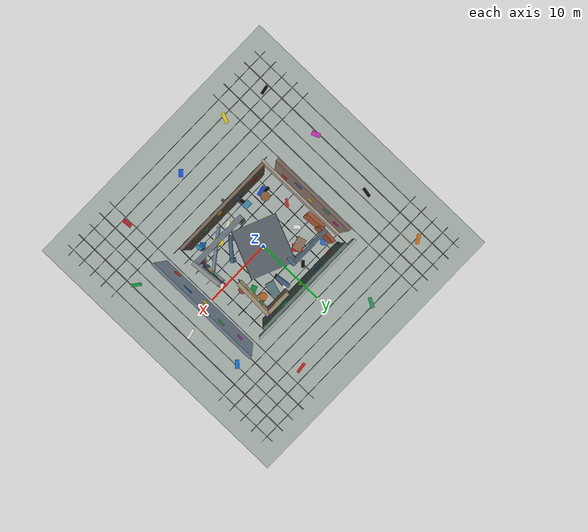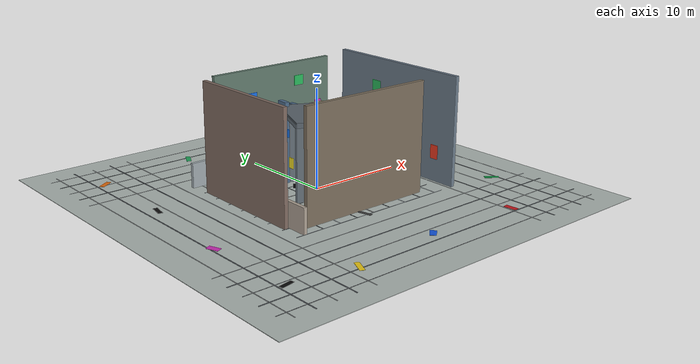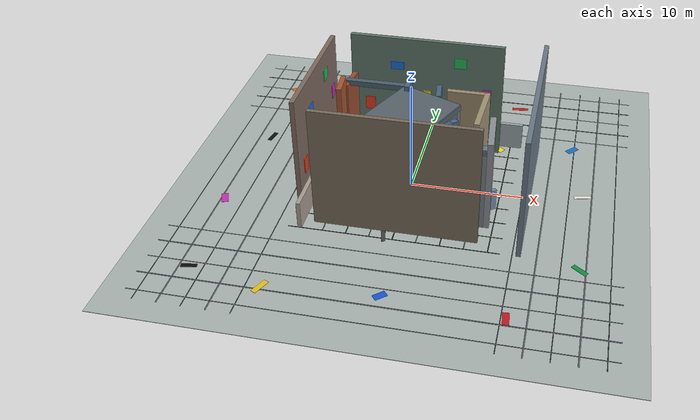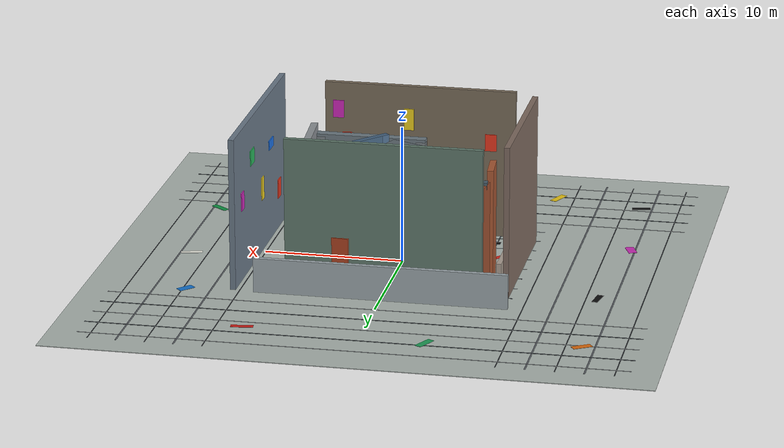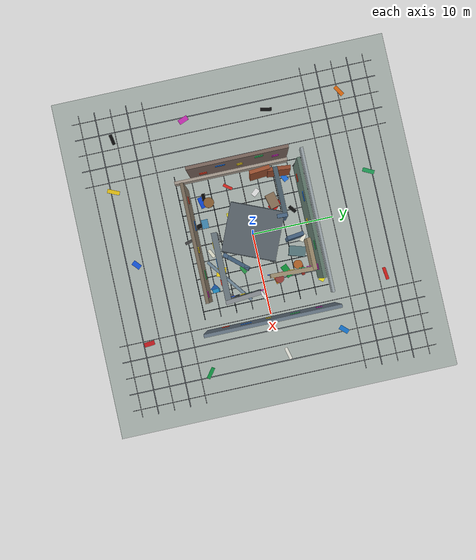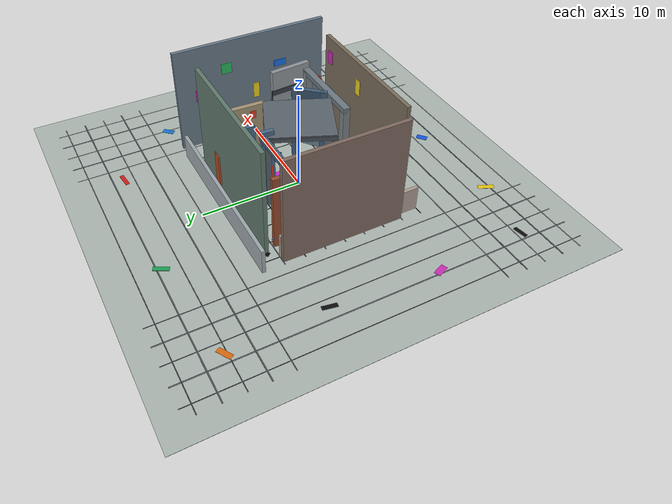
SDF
<sdf version="1.10">
 <world name="simple_apm_rgbd_mid360">
  <physics name="apm_1ms_physics" type="ignored">
   <max_step_size>0.001</max_step_size>
   <real_time_factor>1.0</real_time_factor>
  </physics>
  <plugin filename="gz-sim-physics-system" name="gz::sim::systems::Physics"/>
  <plugin filename="gz-sim-air-pressure-system" name="gz::sim::systems::AirPressure"/>
  <plugin filename="gz-sim-sensors-system" name="gz::sim::systems::Sensors">
   <render_engine>ogre2</render_engine>
  </plugin>
  <plugin filename="gz-sim-user-commands-system" name="gz::sim::systems::UserCommands"/>
  <plugin filename="gz-sim-scene-broadcaster-system" name="gz::sim::systems::SceneBroadcaster"/>
  <plugin filename="gz-sim-imu-system" name="gz::sim::systems::Imu"/>
  <plugin filename="gz-sim-navsat-system" name="gz::sim::systems::NavSat"/>
  <scene>
   <ambient>0.55 0.55 0.55 1</ambient>
   <background>0.72 0.78 0.86 1</background>
   <grid>false</grid>
   <shadows>true</shadows>
  </scene>
  <spherical_coordinates>
   <latitude_deg>-35.363262</latitude_deg>
   <longitude_deg>149.165237</longitude_deg>
   <elevation>584</elevation>
   <heading_deg>0</heading_deg>
   <surface_model>EARTH_WGS84</surface_model>
  </spherical_coordinates>
  <light name="sun" type="directional">
   <pose>0 0 20 0 0 0</pose>
   <direction>-0.45 0.25 -0.86</direction>
   <diffuse>0.95 0.92 0.86 1</diffuse>
   <specular>0.35 0.35 0.32 1</specular>
  </light>
  <model name="textured_floor">
   <static>true</static>
   <pose>0 0 -0.025 0 0 0</pose>
   <link name="floor_link">
    <collision name="floor_collision"><geometry><box><size>42 42 0.05</size></box></geometry></collision>
    <visual name="floor_visual">
     <geometry><box><size>42 42 0.05</size></box></geometry>
     <material>
      <ambient>0.68 0.72 0.70 1</ambient>
      <diffuse>0.68 0.72 0.70 1</diffuse>
      <specular>0.08 0.08 0.08 1</specular>
     </material>
    </visual>
   </link>
  </model>
  <model name="visible_floor_pattern">
   <static>true</static>
   <link name="pattern_link">
    <visual name="x_grid_-18">
     <pose>-18 0 0.012 0 0 0</pose>
     <geometry><box><size>0.08 38 0.012</size></box></geometry>
     <material><diffuse>0.06 0.07 0.08 1</diffuse></material>
    </visual>
    <visual name="x_grid_-16">
     <pose>-16 0 0.012 0 0 0</pose>
     <geometry><box><size>0.12 38 0.012</size></box></geometry>
     <material><diffuse>0.34 0.36 0.38 1</diffuse></material>
    </visual>
    <visual name="x_grid_-14">
     <pose>-14 0 0.012 0 0 0</pose>
     <geometry><box><size>0.08 38 0.012</size></box></geometry>
     <material><diffuse>0.06 0.07 0.08 1</diffuse></material>
    </visual>
    <visual name="x_grid_-12">
     <pose>-12 0 0.012 0 0 0</pose>
     <geometry><box><size>0.12 38 0.012</size></box></geometry>
     <material><diffuse>0.34 0.36 0.38 1</diffuse></material>
    </visual>
    <visual name="x_grid_-10">
     <pose>-10 0 0.012 0 0 0</pose>
     <geometry><box><size>0.08 38 0.012</size></box></geometry>
     <material><diffuse>0.06 0.07 0.08 1</diffuse></material>
    </visual>
    <visual name="x_grid_-8">
     <pose>-8 0 0.012 0 0 0</pose>
     <geometry><box><size>0.08 16 0.012</size></box></geometry>
     <material><ambient>0.08 0.10 0.12 1</ambient><diffuse>0.08 0.10 0.12 1</diffuse></material>
    </visual>
    <visual name="x_grid_-6">
     <pose>-6 0 0.012 0 0 0</pose>
     <geometry><box><size>0.08 16 0.012</size></box></geometry>
     <material><ambient>0.28 0.30 0.32 1</ambient><diffuse>0.28 0.30 0.32 1</diffuse></material>
    </visual>
    <visual name="x_grid_-4">
     <pose>-4 0 0.012 0 0 0</pose>
     <geometry><box><size>0.08 16 0.012</size></box></geometry>
     <material><ambient>0.08 0.10 0.12 1</ambient><diffuse>0.08 0.10 0.12 1</diffuse></material>
    </visual>
    <visual name="x_grid_-2">
     <pose>-2 0 0.012 0 0 0</pose>
     <geometry><box><size>0.08 16 0.012</size></box></geometry>
     <material><ambient>0.28 0.30 0.32 1</ambient><diffuse>0.28 0.30 0.32 1</diffuse></material>
    </visual>
    <visual name="x_grid_0">
     <pose>0 0 0.012 0 0 0</pose>
     <geometry><box><size>0.10 16 0.012</size></box></geometry>
     <material><ambient>0.02 0.02 0.02 1</ambient><diffuse>0.02 0.02 0.02 1</diffuse></material>
    </visual>
    <visual name="x_grid_2">
     <pose>2 0 0.012 0 0 0</pose>
     <geometry><box><size>0.08 16 0.012</size></box></geometry>
     <material><ambient>0.28 0.30 0.32 1</ambient><diffuse>0.28 0.30 0.32 1</diffuse></material>
    </visual>
    <visual name="x_grid_4">
     <pose>4 0 0.012 0 0 0</pose>
     <geometry><box><size>0.08 16 0.012</size></box></geometry>
     <material><ambient>0.08 0.10 0.12 1</ambient><diffuse>0.08 0.10 0.12 1</diffuse></material>
    </visual>
    <visual name="x_grid_6">
     <pose>6 0 0.012 0 0 0</pose>
     <geometry><box><size>0.08 16 0.012</size></box></geometry>
     <material><ambient>0.28 0.30 0.32 1</ambient><diffuse>0.28 0.30 0.32 1</diffuse></material>
    </visual>
    <visual name="x_grid_8">
     <pose>8 0 0.012 0 0 0</pose>
     <geometry><box><size>0.08 16 0.012</size></box></geometry>
     <material><ambient>0.08 0.10 0.12 1</ambient><diffuse>0.08 0.10 0.12 1</diffuse></material>
    </visual>
    <visual name="x_grid_10">
     <pose>10 0 0.012 0 0 0</pose>
     <geometry><box><size>0.08 38 0.012</size></box></geometry>
     <material><diffuse>0.06 0.07 0.08 1</diffuse></material>
    </visual>
    <visual name="x_grid_12">
     <pose>12 0 0.012 0 0 0</pose>
     <geometry><box><size>0.12 38 0.012</size></box></geometry>
     <material><diffuse>0.34 0.36 0.38 1</diffuse></material>
    </visual>
    <visual name="x_grid_14">
     <pose>14 0 0.012 0 0 0</pose>
     <geometry><box><size>0.08 38 0.012</size></box></geometry>
     <material><diffuse>0.06 0.07 0.08 1</diffuse></material>
    </visual>
    <visual name="x_grid_16">
     <pose>16 0 0.012 0 0 0</pose>
     <geometry><box><size>0.12 38 0.012</size></box></geometry>
     <material><diffuse>0.34 0.36 0.38 1</diffuse></material>
    </visual>
    <visual name="x_grid_18">
     <pose>18 0 0.012 0 0 0</pose>
     <geometry><box><size>0.08 38 0.012</size></box></geometry>
     <material><diffuse>0.06 0.07 0.08 1</diffuse></material>
    </visual>
    <visual name="y_grid_-18">
     <pose>0 -18 0.014 0 0 0</pose>
     <geometry><box><size>38 0.08 0.012</size></box></geometry>
     <material><diffuse>0.05 0.06 0.07 1</diffuse></material>
    </visual>
    <visual name="y_grid_-16">
     <pose>0 -16 0.014 0 0 0</pose>
     <geometry><box><size>38 0.12 0.012</size></box></geometry>
     <material><diffuse>0.32 0.34 0.36 1</diffuse></material>
    </visual>
    <visual name="y_grid_-14">
     <pose>0 -14 0.014 0 0 0</pose>
     <geometry><box><size>38 0.08 0.012</size></box></geometry>
     <material><diffuse>0.05 0.06 0.07 1</diffuse></material>
    </visual>
    <visual name="y_grid_-12">
     <pose>0 -12 0.014 0 0 0</pose>
     <geometry><box><size>38 0.12 0.012</size></box></geometry>
     <material><diffuse>0.32 0.34 0.36 1</diffuse></material>
    </visual>
    <visual name="y_grid_-10">
     <pose>0 -10 0.014 0 0 0</pose>
     <geometry><box><size>38 0.08 0.012</size></box></geometry>
     <material><diffuse>0.05 0.06 0.07 1</diffuse></material>
    </visual>
    <visual name="y_grid_-8">
     <pose>0 -8 0.014 0 0 0</pose>
     <geometry><box><size>18 0.08 0.012</size></box></geometry>
     <material><ambient>0.08 0.10 0.12 1</ambient><diffuse>0.08 0.10 0.12 1</diffuse></material>
    </visual>
    <visual name="y_grid_-6">
     <pose>0 -6 0.014 0 0 0</pose>
     <geometry><box><size>18 0.08 0.012</size></box></geometry>
     <material><ambient>0.30 0.32 0.34 1</ambient><diffuse>0.30 0.32 0.34 1</diffuse></material>
    </visual>
    <visual name="y_grid_-4">
     <pose>0 -4 0.014 0 0 0</pose>
     <geometry><box><size>18 0.08 0.012</size></box></geometry>
     <material><ambient>0.08 0.10 0.12 1</ambient><diffuse>0.08 0.10 0.12 1</diffuse></material>
    </visual>
    <visual name="y_grid_-2">
     <pose>0 -2 0.014 0 0 0</pose>
     <geometry><box><size>18 0.08 0.012</size></box></geometry>
     <material><ambient>0.30 0.32 0.34 1</ambient><diffuse>0.30 0.32 0.34 1</diffuse></material>
    </visual>
    <visual name="y_grid_0">
     <pose>0 0 0.014 0 0 0</pose>
     <geometry><box><size>18 0.10 0.012</size></box></geometry>
     <material><ambient>0.02 0.02 0.02 1</ambient><diffuse>0.02 0.02 0.02 1</diffuse></material>
    </visual>
    <visual name="y_grid_2">
     <pose>0 2 0.014 0 0 0</pose>
     <geometry><box><size>18 0.08 0.012</size></box></geometry>
     <material><ambient>0.30 0.32 0.34 1</ambient><diffuse>0.30 0.32 0.34 1</diffuse></material>
    </visual>
    <visual name="y_grid_4">
     <pose>0 4 0.014 0 0 0</pose>
     <geometry><box><size>18 0.08 0.012</size></box></geometry>
     <material><ambient>0.08 0.10 0.12 1</ambient><diffuse>0.08 0.10 0.12 1</diffuse></material>
    </visual>
    <visual name="y_grid_6">
     <pose>0 6 0.014 0 0 0</pose>
     <geometry><box><size>18 0.08 0.012</size></box></geometry>
     <material><ambient>0.30 0.32 0.34 1</ambient><diffuse>0.30 0.32 0.34 1</diffuse></material>
    </visual>
    <visual name="y_grid_8">
     <pose>0 8 0.014 0 0 0</pose>
     <geometry><box><size>18 0.08 0.012</size></box></geometry>
     <material><ambient>0.08 0.10 0.12 1</ambient><diffuse>0.08 0.10 0.12 1</diffuse></material>
    </visual>
    <visual name="y_grid_10">
     <pose>0 10 0.014 0 0 0</pose>
     <geometry><box><size>38 0.08 0.012</size></box></geometry>
     <material><diffuse>0.05 0.06 0.07 1</diffuse></material>
    </visual>
    <visual name="y_grid_12">
     <pose>0 12 0.014 0 0 0</pose>
     <geometry><box><size>38 0.12 0.012</size></box></geometry>
     <material><diffuse>0.32 0.34 0.36 1</diffuse></material>
    </visual>
    <visual name="y_grid_14">
     <pose>0 14 0.014 0 0 0</pose>
     <geometry><box><size>38 0.08 0.012</size></box></geometry>
     <material><diffuse>0.05 0.06 0.07 1</diffuse></material>
    </visual>
    <visual name="y_grid_16">
     <pose>0 16 0.014 0 0 0</pose>
     <geometry><box><size>38 0.12 0.012</size></box></geometry>
     <material><diffuse>0.32 0.34 0.36 1</diffuse></material>
    </visual>
    <visual name="y_grid_18">
     <pose>0 18 0.014 0 0 0</pose>
     <geometry><box><size>38 0.08 0.012</size></box></geometry>
     <material><diffuse>0.05 0.06 0.07 1</diffuse></material>
    </visual>
    <visual name="blue_patch">
     <pose>-5.2 -5.2 0.022 0 0 0.22</pose>
     <geometry><box><size>1.4 0.9 0.014</size></box></geometry>
     <material><ambient>0.05 0.28 0.85 1</ambient><diffuse>0.05 0.28 0.85 1</diffuse></material>
    </visual>
    <visual name="yellow_patch">
     <pose>3.7 -4.8 0.022 0 0 -0.32</pose>
     <geometry><box><size>1.2 1.1 0.014</size></box></geometry>
     <material><ambient>0.95 0.82 0.08 1</ambient><diffuse>0.95 0.82 0.08 1</diffuse></material>
    </visual>
    <visual name="red_patch">
     <pose>-3.0 3.4 0.022 0 0 0.65</pose>
     <geometry><box><size>1.0 1.5 0.014</size></box></geometry>
     <material><ambient>0.82 0.10 0.08 1</ambient><diffuse>0.82 0.10 0.08 1</diffuse></material>
    </visual>
    <visual name="green_patch">
     <pose>5.3 3.1 0.022 0 0 0.4</pose>
     <geometry><box><size>1.6 0.8 0.014</size></box></geometry>
     <material><ambient>0.05 0.58 0.22 1</ambient><diffuse>0.05 0.58 0.22 1</diffuse></material>
    </visual>
   </link>
  </model>
  <model name="walls_and_obstacles">
   <static>true</static>
   <link name="link">
    <collision name="north_wall">
     <pose>0 8 1.25 0 0 0</pose>
     <geometry><box><size>18 0.35 2.5</size></box></geometry>
    </collision>
    <visual name="north_wall_v">
     <pose>0 8 1.25 0 0 0</pose>
     <geometry><box><size>18 0.35 2.5</size></box></geometry>
     <material><diffuse>0.62 0.66 0.68 1</diffuse></material>
    </visual>
    <collision name="west_wall">
     <pose>-8 -1 1.25 0 0 0</pose>
     <geometry><box><size>0.35 14 2.5</size></box></geometry>
    </collision>
    <visual name="west_wall_v">
     <pose>-8 -1 1.25 0 0 0</pose>
     <geometry><box><size>0.35 14 2.5</size></box></geometry>
     <material><diffuse>0.68 0.63 0.58 1</diffuse></material>
    </visual>
    <collision name="short_wall">
     <pose>5 -4 1.0 0 0 0.65</pose>
     <geometry><box><size>7 0.35 2.0</size></box></geometry>
    </collision>
    <visual name="short_wall_v">
     <pose>5 -4 1.0 0 0 0.65</pose>
     <geometry><box><size>7 0.35 2.0</size></box></geometry>
     <material><diffuse>0.45 0.55 0.62 1</diffuse></material>
    </visual>
    <collision name="box_1">
     <pose>-3.5 3.2 0.6 0 0 0.25</pose>
     <geometry><box><size>1.8 1.2 1.2</size></box></geometry>
    </collision>
    <visual name="box_1_v">
     <pose>-3.5 3.2 0.6 0 0 0.25</pose>
     <geometry><box><size>1.8 1.2 1.2</size></box></geometry>
     <material><diffuse>0.55 0.45 0.35 1</diffuse></material>
    </visual>
    <collision name="box_2">
     <pose>3.2 4.8 0.85 0 0 -0.3</pose>
     <geometry><box><size>1.2 2.0 1.7</size></box></geometry>
    </collision>
    <visual name="box_2_v">
     <pose>3.2 4.8 0.85 0 0 -0.3</pose>
     <geometry><box><size>1.2 2.0 1.7</size></box></geometry>
     <material><diffuse>0.35 0.48 0.5 1</diffuse></material>
    </visual>
    <collision name="cylinder">
     <pose>6 2 0.75 0 0 0</pose>
     <geometry><cylinder><radius>0.55</radius><length>1.5</length></cylinder></geometry>
    </collision>
    <visual name="cylinder_v">
     <pose>6 2 0.75 0 0 0</pose>
     <geometry><cylinder><radius>0.55</radius><length>1.5</length></cylinder></geometry>
     <material><diffuse>0.6 0.25 0.22 1</diffuse></material>
    </visual>
   </link>
  </model>
  <model name="flow_floor_markers">
   <static>true</static>
   <link name="markers_link">
    <visual name="marker_0">
     <pose>-5.80 -5.00 0.035 0 0 0.000</pose>
     <geometry><box><size>0.90 0.45 0.025</size></box></geometry>
     <material><ambient>0.02 0.02 0.02 1.0</ambient><diffuse>0.02 0.02 0.02 1.0</diffuse></material>
    </visual>
    <visual name="marker_1">
     <pose>-2.40 -6.20 0.035 0 0 0.230</pose>
     <geometry><box><size>0.55 1.10 0.025</size></box></geometry>
     <material><ambient>0.05 0.05 0.05 1.0</ambient><diffuse>0.05 0.05 0.05 1.0</diffuse></material>
    </visual>
    <visual name="marker_2">
     <pose>1.20 -5.50 0.035 0 0 0.460</pose>
     <geometry><box><size>1.10 0.40 0.025</size></box></geometry>
     <material><ambient>0.90 0.90 0.82 1.0</ambient><diffuse>0.90 0.90 0.82 1.0</diffuse></material>
    </visual>
    <visual name="marker_3">
     <pose>5.50 -6.00 0.035 0 0 0.690</pose>
     <geometry><box><size>0.70 0.80 0.025</size></box></geometry>
     <material><ambient>0.10 0.35 0.65 1.0</ambient><diffuse>0.10 0.35 0.65 1.0</diffuse></material>
    </visual>
    <visual name="marker_4">
     <pose>-6.40 -1.80 0.035 0 0 0.920</pose>
     <geometry><box><size>1.20 0.35 0.025</size></box></geometry>
     <material><ambient>0.86 0.15 0.12 1.0</ambient><diffuse>0.86 0.15 0.12 1.0</diffuse></material>
    </visual>
    <visual name="marker_5">
     <pose>-3.00 -2.20 0.035 0 0 0.000</pose>
     <geometry><box><size>0.45 0.95 0.025</size></box></geometry>
     <material><ambient>0.95 0.90 0.20 1.0</ambient><diffuse>0.95 0.90 0.20 1.0</diffuse></material>
    </visual>
    <visual name="marker_6">
     <pose>0.40 -1.60 0.035 0 0 0.230</pose>
     <geometry><box><size>0.80 0.65 0.025</size></box></geometry>
     <material><ambient>0.03 0.03 0.03 1.0</ambient><diffuse>0.03 0.03 0.03 1.0</diffuse></material>
    </visual>
    <visual name="marker_7">
     <pose>4.00 -2.10 0.035 0 0 0.460</pose>
     <geometry><box><size>1.00 0.45 0.025</size></box></geometry>
     <material><ambient>0.15 0.60 0.28 1.0</ambient><diffuse>0.15 0.60 0.28 1.0</diffuse></material>
    </visual>
    <visual name="marker_8">
     <pose>-5.00 1.40 0.035 0 0 0.690</pose>
     <geometry><box><size>0.60 1.00 0.025</size></box></geometry>
     <material><ambient>0.92 0.92 0.92 1.0</ambient><diffuse>0.92 0.92 0.92 1.0</diffuse></material>
    </visual>
    <visual name="marker_9">
     <pose>-1.10 1.90 0.035 0 0 0.920</pose>
     <geometry><box><size>1.20 0.50 0.025</size></box></geometry>
     <material><ambient>0.02 0.02 0.02 1.0</ambient><diffuse>0.02 0.02 0.02 1.0</diffuse></material>
    </visual>
    <visual name="marker_10">
     <pose>2.20 1.20 0.035 0 0 0.000</pose>
     <geometry><box><size>0.55 1.15 0.025</size></box></geometry>
     <material><ambient>0.75 0.20 0.85 1.0</ambient><diffuse>0.75 0.20 0.85 1.0</diffuse></material>
    </visual>
    <visual name="marker_11">
     <pose>6.10 1.70 0.035 0 0 0.230</pose>
     <geometry><box><size>0.95 0.50 0.025</size></box></geometry>
     <material><ambient>0.85 0.55 0.08 1.0</ambient><diffuse>0.85 0.55 0.08 1.0</diffuse></material>
    </visual>
    <visual name="marker_12">
     <pose>-6.00 5.30 0.035 0 0 0.460</pose>
     <geometry><box><size>0.85 0.65 0.025</size></box></geometry>
     <material><ambient>0.12 0.45 0.90 1.0</ambient><diffuse>0.12 0.45 0.90 1.0</diffuse></material>
    </visual>
    <visual name="marker_13">
     <pose>-2.00 5.40 0.035 0 0 0.690</pose>
     <geometry><box><size>1.05 0.45 0.025</size></box></geometry>
     <material><ambient>0.05 0.05 0.05 1.0</ambient><diffuse>0.05 0.05 0.05 1.0</diffuse></material>
    </visual>
    <visual name="marker_14">
     <pose>1.70 5.90 0.035 0 0 0.920</pose>
     <geometry><box><size>0.50 1.00 0.025</size></box></geometry>
     <material><ambient>0.95 0.95 0.88 1.0</ambient><diffuse>0.95 0.95 0.88 1.0</diffuse></material>
    </visual>
    <visual name="marker_15">
     <pose>5.60 5.00 0.035 0 0 0.000</pose>
     <geometry><box><size>1.25 0.40 0.025</size></box></geometry>
     <material><ambient>0.55 0.15 0.12 1.0</ambient><diffuse>0.55 0.15 0.12 1.0</diffuse></material>
    </visual>
    <visual name="marker_16">
     <pose>-0.80 -7.70 0.035 0 0 0.230</pose>
     <geometry><box><size>0.35 1.40 0.025</size></box></geometry>
     <material><ambient>0.25 0.25 0.25 1.0</ambient><diffuse>0.25 0.25 0.25 1.0</diffuse></material>
    </visual>
    <visual name="marker_17">
     <pose>7.50 -0.40 0.035 0 0 0.460</pose>
     <geometry><box><size>1.40 0.35 0.025</size></box></geometry>
     <material><ambient>0.93 0.93 0.93 1.0</ambient><diffuse>0.93 0.93 0.93 1.0</diffuse></material>
    </visual>
    <visual name="marker_18">
     <pose>-7.20 6.90 0.035 0 0 0.690</pose>
     <geometry><box><size>0.50 0.50 0.025</size></box></geometry>
     <material><ambient>0.02 0.02 0.02 1.0</ambient><diffuse>0.02 0.02 0.02 1.0</diffuse></material>
    </visual>
    <visual name="marker_19">
     <pose>7.00 7.20 0.035 0 0 0.920</pose>
     <geometry><box><size>0.65 0.95 0.025</size></box></geometry>
     <material><ambient>0.95 0.90 0.10 1.0</ambient><diffuse>0.95 0.90 0.10 1.0</diffuse></material>
    </visual>
    <visual name="marker_20">
     <pose>-15.2 -14.5 0.035 0 0 0.18</pose>
     <geometry><box><size>1.35 0.42 0.025</size></box></geometry>
     <material><diffuse>0.04 0.04 0.04 1</diffuse></material>
    </visual>
    <visual name="marker_21">
     <pose>-8.8 -15.7 0.035 0 0 -0.42</pose>
     <geometry><box><size>0.48 1.55 0.025</size></box></geometry>
     <material><diffuse>0.92 0.78 0.08 1</diffuse></material>
    </visual>
    <visual name="marker_22">
     <pose>0.6 -14.8 0.035 0 0 0.72</pose>
     <geometry><box><size>1.10 0.62 0.025</size></box></geometry>
     <material><diffuse>0.08 0.34 0.88 1</diffuse></material>
    </visual>
    <visual name="marker_23">
     <pose>10.4 -15.3 0.035 0 0 0.08</pose>
     <geometry><box><size>0.55 1.30 0.025</size></box></geometry>
     <material><diffuse>0.78 0.10 0.12 1</diffuse></material>
    </visual>
    <visual name="marker_24">
     <pose>15.5 -8.7 0.035 0 0 -0.65</pose>
     <geometry><box><size>1.45 0.45 0.025</size></box></geometry>
     <material><diffuse>0.06 0.58 0.26 1</diffuse></material>
    </visual>
    <visual name="marker_25">
     <pose>-15.7 -5.4 0.035 0 0 0.38</pose>
     <geometry><box><size>0.62 1.22 0.025</size></box></geometry>
     <material><diffuse>0.80 0.18 0.72 1</diffuse></material>
    </visual>
    <visual name="marker_26">
     <pose>15.2 1.1 0.035 0 0 0.24</pose>
     <geometry><box><size>1.52 0.38 0.025</size></box></geometry>
     <material><diffuse>0.92 0.92 0.88 1</diffuse></material>
    </visual>
    <visual name="marker_27">
     <pose>-14.8 4.9 0.035 0 0 -0.18</pose>
     <geometry><box><size>0.44 1.42 0.025</size></box></geometry>
     <material><diffuse>0.05 0.05 0.05 1</diffuse></material>
    </visual>
    <visual name="marker_28">
     <pose>13.8 8.4 0.035 0 0 0.82</pose>
     <geometry><box><size>1.20 0.58 0.025</size></box></geometry>
     <material><diffuse>0.08 0.46 0.82 1</diffuse></material>
    </visual>
    <visual name="marker_29">
     <pose>-15.1 14.2 0.035 0 0 0.55</pose>
     <geometry><box><size>1.38 0.50 0.025</size></box></geometry>
     <material><diffuse>0.88 0.42 0.06 1</diffuse></material>
    </visual>
    <visual name="marker_30">
     <pose>-4.6 15.6 0.035 0 0 -0.48</pose>
     <geometry><box><size>0.50 1.48 0.025</size></box></geometry>
     <material><diffuse>0.12 0.62 0.34 1</diffuse></material>
    </visual>
    <visual name="marker_31">
     <pose>8.2 14.9 0.035 0 0 0.12</pose>
     <geometry><box><size>1.55 0.40 0.025</size></box></geometry>
     <material><diffuse>0.82 0.12 0.10 1</diffuse></material>
    </visual>
   </link>
  </model>
  <model name="range_facet_ground_relief">
   <static>true</static>
   <link name="relief_link">
    <collision name="relief_0">
     <pose>-5.0 -4.5 0.12 0 0 0.2</pose>
     <geometry><cylinder><radius>0.65</radius><length>0.24</length></cylinder></geometry>
    </collision>
    <visual name="relief_0_v">
     <pose>-5.0 -4.5 0.12 0 0 0.2</pose>
     <geometry><cylinder><radius>0.65</radius><length>0.24</length></cylinder></geometry>
     <material><ambient>0.42 0.30 0.18 1</ambient><diffuse>0.55 0.38 0.20 1</diffuse></material>
    </visual>
    <collision name="relief_1">
     <pose>-2.5 -5.5 0.17 0 0 0.0</pose>
     <geometry><box><size>1.1 0.8 0.34</size></box></geometry>
    </collision>
    <visual name="relief_1_v">
     <pose>-2.5 -5.5 0.17 0 0 0.0</pose>
     <geometry><box><size>1.1 0.8 0.34</size></box></geometry>
     <material><ambient>0.18 0.38 0.52 1</ambient><diffuse>0.26 0.55 0.72 1</diffuse></material>
    </visual>
    <collision name="relief_2">
     <pose>4.8 4.6 0.19 0 0 0.3</pose>
     <geometry><cylinder><radius>0.55</radius><length>0.38</length></cylinder></geometry>
    </collision>
    <visual name="relief_2_v">
     <pose>4.8 4.6 0.19 0 0 0.3</pose>
     <geometry><cylinder><radius>0.55</radius><length>0.38</length></cylinder></geometry>
     <material><ambient>0.50 0.28 0.12 1</ambient><diffuse>0.72 0.40 0.16 1</diffuse></material>
    </visual>
   </link>
  </model>
  <include><uri>model://s_curve_lidar_landmarks</uri><name>s_curve_lidar_landmarks</name></include>
  <include><uri>model://s_curve_urban_structures</uri><name>s_curve_urban_structures</name></include>
 </world>
</sdf>

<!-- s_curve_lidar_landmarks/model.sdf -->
<sdf version="1.10">
  <model name="s_curve_lidar_landmarks">
    <static>true</static>
    <link name="landmarks">
      <!-- Collision-only landmarks preserve stage3 LiDAR observability without
           occluding the RGB scene stored in the frozen RTAB reference map. -->
      <collision name="west_south_slab">
        <pose>-6.2 -5.2 1.35 0 0 0.30</pose>
        <geometry><box><size>0.75 1.50 2.70</size></box></geometry>
      </collision>

      <collision name="east_south_column">
        <pose>6.2 -4.0 1.65 0 0 0</pose>
        <geometry><cylinder><radius>0.48</radius><length>3.30</length></cylinder></geometry>
      </collision>

      <collision name="west_mid_wedge">
        <pose>-6.3 -1.8 1.10 0 0 -0.55</pose>
        <geometry><box><size>1.25 0.65 2.20</size></box></geometry>
      </collision>

      <collision name="east_mid_tower">
        <pose>6.35 -0.3 1.90 0 0 0.18</pose>
        <geometry><box><size>0.60 0.90 3.80</size></box></geometry>
      </collision>

      <collision name="west_north_column">
        <pose>-6.15 1.5 1.50 0 0 0</pose>
        <geometry><cylinder><radius>0.62</radius><length>3.00</length></cylinder></geometry>
      </collision>

      <collision name="east_north_slab">
        <pose>6.25 2.8 1.25 0 0 -0.40</pose>
        <geometry><box><size>1.40 0.55 2.50</size></box></geometry>
      </collision>

      <collision name="west_end_tower">
        <pose>-6.35 4.7 1.75 0 0 0.12</pose>
        <geometry><box><size>0.70 1.10 3.50</size></box></geometry>
      </collision>

      <collision name="east_end_block">
        <pose>6.15 5.5 1.05 0 0 0.62</pose>
        <geometry><box><size>1.10 0.80 2.10</size></box></geometry>
      </collision>

      <collision name="center_west_pillar"><pose>-4.0 -1.0 1.45 0 0 0.25</pose><geometry><box><size>0.55 0.90 2.90</size></box></geometry></collision>

      <collision name="center_east_column"><pose>4.0 1.0 1.65 0 0 0</pose><geometry><cylinder><radius>0.42</radius><length>3.30</length></cylinder></geometry></collision>

      <collision name="south_endpoint_gate"><pose>3.5 -6.0 1.70 0 0 -0.32</pose><geometry><box><size>0.62 1.00 3.40</size></box></geometry></collision>

      <collision name="north_endpoint_gate"><pose>-3.5 6.0 1.55 0 0 0.44</pose><geometry><box><size>0.70 0.88 3.10</size></box></geometry></collision>

      <collision name="route_marker_w_0"><pose>-5.2 -5.0 2.25 0 0 0</pose><geometry><cylinder><radius>0.22</radius><length>4.50</length></cylinder></geometry></collision>
      <collision name="route_marker_w_1"><pose>-5.2 -2.5 2.25 0 0 0</pose><geometry><cylinder><radius>0.22</radius><length>4.50</length></cylinder></geometry></collision>
      <collision name="route_marker_w_2"><pose>-5.2 0.0 2.25 0 0 0</pose><geometry><cylinder><radius>0.22</radius><length>4.50</length></cylinder></geometry></collision>
      <collision name="route_marker_w_3"><pose>-5.2 2.5 2.25 0 0 0</pose><geometry><cylinder><radius>0.22</radius><length>4.50</length></cylinder></geometry></collision>
      <collision name="route_marker_w_4"><pose>-5.2 5.0 2.25 0 0 0</pose><geometry><cylinder><radius>0.22</radius><length>4.50</length></cylinder></geometry></collision>
      <collision name="route_marker_e_0"><pose>5.2 -5.0 2.25 0 0 0</pose><geometry><cylinder><radius>0.22</radius><length>4.50</length></cylinder></geometry></collision>
      <collision name="route_marker_e_1"><pose>5.2 -2.5 2.25 0 0 0</pose><geometry><cylinder><radius>0.22</radius><length>4.50</length></cylinder></geometry></collision>
      <collision name="route_marker_e_2"><pose>5.2 0.0 2.25 0 0 0</pose><geometry><cylinder><radius>0.22</radius><length>4.50</length></cylinder></geometry></collision>
      <collision name="route_marker_e_3"><pose>5.2 2.5 2.25 0 0 0</pose><geometry><cylinder><radius>0.22</radius><length>4.50</length></cylinder></geometry></collision>
      <collision name="route_marker_e_4"><pose>5.2 5.0 2.25 0 0 0</pose><geometry><cylinder><radius>0.22</radius><length>4.50</length></cylinder></geometry></collision>

      <!-- Sparse asymmetric geometry extends LiDAR observability into the outer 38 m test area. -->
      <collision name="outer_southwest_tower"><pose>-15 -14 1.9 0 0 0.22</pose><geometry><box><size>0.75 1.20 3.80</size></box></geometry></collision>

      <collision name="outer_south_column"><pose>0 -15.5 1.6 0 0 0</pose><geometry><cylinder><radius>0.58</radius><length>3.20</length></cylinder></geometry></collision>

      <collision name="outer_southeast_slab"><pose>14.8 -13.8 1.35 0 0 -0.58</pose><geometry><box><size>1.55 0.55 2.70</size></box></geometry></collision>

      <collision name="outer_west_column"><pose>-15.5 -5.0 1.75 0 0 0</pose><geometry><cylinder><radius>0.46</radius><length>3.50</length></cylinder></geometry></collision>

      <collision name="outer_east_tower"><pose>15.4 -3.0 2.1 0 0 0.10</pose><geometry><box><size>0.65 0.85 4.20</size></box></geometry></collision>

      <collision name="outer_west_slab"><pose>-15.2 4.2 1.25 0 0 0.68</pose><geometry><box><size>1.45 0.60 2.50</size></box></geometry></collision>

      <collision name="outer_east_column"><pose>15.5 7.0 1.55 0 0 0</pose><geometry><cylinder><radius>0.68</radius><length>3.10</length></cylinder></geometry></collision>

      <collision name="outer_northwest_tower"><pose>-14.2 14.5 2.0 0 0 -0.20</pose><geometry><box><size>0.80 1.15 4.00</size></box></geometry></collision>

      <collision name="outer_north_wedge"><pose>0.8 15.4 1.30 0 0 0.78</pose><geometry><box><size>1.70 0.52 2.60</size></box></geometry></collision>

      <collision name="outer_northeast_column"><pose>14.5 14.2 1.85 0 0 0</pose><geometry><cylinder><radius>0.52</radius><length>3.70</length></cylinder></geometry></collision>
    </link>
  </model>
</sdf>

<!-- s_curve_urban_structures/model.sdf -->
<sdf version="1.10">
  <model name="s_curve_urban_structures">
    <static>true</static>
    <link name="urban_geometry">
      <!-- South arch: the route crosses y=-4.5 near x=3.18 and z=6.0 m. -->
      <collision name="south_arch_left_pier">
        <pose>-0.50 -4.50 3.80 0 0 0</pose>
        <geometry><box><size>0.70 0.70 7.60</size></box></geometry>
      </collision>
      <visual name="south_arch_left_pier_visual">
        <pose>-0.50 -4.50 3.80 0 0 0</pose>
        <geometry><box><size>0.70 0.70 7.60</size></box></geometry>
        <material><ambient>0.34 0.37 0.39 1</ambient><diffuse>0.48 0.51 0.53 1</diffuse><pbr><metal><albedo_map>materials/textures/canyon_v1.png</albedo_map><roughness>0.90</roughness></metal></pbr></material>
      </visual>
      <collision name="south_arch_right_pier">
        <pose>6.86 -4.50 3.80 0 0 0</pose>
        <geometry><box><size>0.70 0.70 7.60</size></box></geometry>
      </collision>
      <visual name="south_arch_right_pier_visual">
        <pose>6.86 -4.50 3.80 0 0 0</pose>
        <geometry><box><size>0.70 0.70 7.60</size></box></geometry>
        <material><ambient>0.34 0.37 0.39 1</ambient><diffuse>0.48 0.51 0.53 1</diffuse><pbr><metal><albedo_map>materials/textures/canyon_v1.png</albedo_map><roughness>0.90</roughness></metal></pbr></material>
      </visual>
      <collision name="south_arch_header">
        <pose>3.18 -4.50 7.55 0 0 0</pose>
        <geometry><box><size>8.06 0.70 0.50</size></box></geometry>
      </collision>
      <visual name="south_arch_header_visual">
        <pose>3.18 -4.50 7.55 0 0 0</pose>
        <geometry><box><size>8.06 0.70 0.50</size></box></geometry>
        <material><ambient>0.27 0.31 0.34 1</ambient><diffuse>0.43 0.48 0.51 1</diffuse><pbr><metal><albedo_map>materials/textures/facade_a_v2.png</albedo_map><roughness>0.88</roughness></metal></pbr></material>
      </visual>

      <!-- Short diagonal tunnel follows the center crossing of the S route. -->
      <collision name="short_tunnel_left_wall">
        <pose>-1.15 -2.71 3.63 0 0 2.74</pose>
        <geometry><box><size>5.80 0.50 7.25</size></box></geometry>
      </collision>
      <visual name="short_tunnel_left_wall_visual">
        <pose>-1.15 -2.71 3.63 0 0 2.74</pose>
        <geometry><box><size>5.80 0.50 7.25</size></box></geometry>
        <material><ambient>0.30 0.33 0.35 1</ambient><diffuse>0.40 0.44 0.47 1</diffuse><pbr><metal><albedo_map>materials/textures/tunnel_v1.png</albedo_map><roughness>0.94</roughness></metal></pbr></material>
      </visual>
      <collision name="short_tunnel_right_wall">
        <pose>1.15 2.71 3.63 0 0 2.74</pose>
        <geometry><box><size>5.80 0.50 7.25</size></box></geometry>
      </collision>
      <visual name="short_tunnel_right_wall_visual">
        <pose>1.15 2.71 3.63 0 0 2.74</pose>
        <geometry><box><size>5.80 0.50 7.25</size></box></geometry>
        <material><ambient>0.30 0.33 0.35 1</ambient><diffuse>0.40 0.44 0.47 1</diffuse><pbr><metal><albedo_map>materials/textures/tunnel_v1.png</albedo_map><roughness>0.94</roughness></metal></pbr></material>
      </visual>
      <collision name="short_tunnel_roof">
        <pose>0 0 7.50 0 0 2.74</pose>
        <geometry><box><size>5.80 6.40 0.50</size></box></geometry>
      </collision>
      <visual name="short_tunnel_roof_visual">
        <pose>0 0 7.50 0 0 2.74</pose>
        <geometry><box><size>5.80 6.40 0.50</size></box></geometry>
        <material><ambient>0.25 0.28 0.30 1</ambient><diffuse>0.36 0.40 0.43 1</diffuse><pbr><metal><albedo_map>materials/textures/tunnel_v1.png</albedo_map><roughness>0.95</roughness></metal></pbr></material>
      </visual>
      <collision name="short_tunnel_south_lintel">
        <pose>2.53 -1.08 7.45 0 0 2.74</pose>
        <geometry><box><size>0.45 6.40 0.40</size></box></geometry>
      </collision>
      <visual name="short_tunnel_south_lintel_visual">
        <pose>2.53 -1.08 7.45 0 0 2.74</pose>
        <geometry><box><size>0.45 6.40 0.40</size></box></geometry>
        <material><ambient>0.22 0.25 0.27 1</ambient><diffuse>0.34 0.38 0.41 1</diffuse><pbr><metal><albedo_map>materials/textures/tunnel_v1.png</albedo_map><roughness>0.94</roughness></metal></pbr></material>
      </visual>
      <collision name="short_tunnel_north_lintel">
        <pose>-2.53 1.08 7.45 0 0 2.74</pose>
        <geometry><box><size>0.45 6.40 0.40</size></box></geometry>
      </collision>
      <visual name="short_tunnel_north_lintel_visual">
        <pose>-2.53 1.08 7.45 0 0 2.74</pose>
        <geometry><box><size>0.45 6.40 0.40</size></box></geometry>
        <material><ambient>0.22 0.25 0.27 1</ambient><diffuse>0.34 0.38 0.41 1</diffuse><pbr><metal><albedo_map>materials/textures/tunnel_v1.png</albedo_map><roughness>0.94</roughness></metal></pbr></material>
      </visual>

      <!-- North canyon: asymmetric segmented walls create corners and an alley opening. -->
      <collision name="urban_canyon_west_south">
        <pose>-6.82 2.27 4.20 0 0 0.08</pose>
        <geometry><box><size>0.45 2.45 8.40</size></box></geometry>
      </collision>
      <visual name="urban_canyon_west_south_visual">
        <pose>-6.82 2.27 4.20 0 0 0.08</pose>
        <geometry><box><size>0.45 2.45 8.40</size></box></geometry>
        <material><ambient>0.48 0.25 0.16 1</ambient><diffuse>0.66 0.34 0.20 1</diffuse><pbr><metal><albedo_map>materials/textures/facade_b_v2.png</albedo_map><roughness>0.91</roughness></metal></pbr></material>
      </visual>
      <collision name="urban_canyon_west_north">
        <pose>-6.58 4.55 3.80 0 0 -0.10</pose>
        <geometry><box><size>0.45 2.70 7.60</size></box></geometry>
      </collision>
      <visual name="urban_canyon_west_north_visual">
        <pose>-6.58 4.55 3.80 0 0 -0.10</pose>
        <geometry><box><size>0.45 2.70 7.60</size></box></geometry>
        <material><ambient>0.42 0.22 0.15 1</ambient><diffuse>0.60 0.30 0.18 1</diffuse><pbr><metal><albedo_map>materials/textures/facade_b_v2.png</albedo_map><roughness>0.91</roughness></metal></pbr></material>
      </visual>
      <!-- The east-south canyon wall terminates before the protected central
           corridor. A separate route-normal gateway below provides the
           deliberate second-lobe fly-through. -->
      <collision name="urban_canyon_east_south">
        <pose>-1.07 3.70 4.10 0 0 -0.05</pose>
        <geometry><box><size>0.45 1.20 8.20</size></box></geometry>
      </collision>
      <visual name="urban_canyon_east_south_visual">
        <pose>-1.07 3.70 4.10 0 0 -0.05</pose>
        <geometry><box><size>0.45 1.20 8.20</size></box></geometry>
        <material><ambient>0.22 0.30 0.38 1</ambient><diffuse>0.30 0.42 0.54 1</diffuse><pbr><metal><albedo_map>materials/textures/canyon_v1.png</albedo_map><roughness>0.90</roughness></metal></pbr></material>
      </visual>
      <collision name="east_canyon_gateway_south_pier">
        <pose>2.07 -3.70 4.10 0 0 -0.724</pose>
        <geometry><box><size>0.45 0.60 8.20</size></box></geometry>
      </collision>
      <visual name="east_canyon_gateway_south_pier_visual">
        <pose>2.07 -3.70 4.10 0 0 -0.724</pose>
        <geometry><box><size>0.45 0.60 8.20</size></box></geometry>
        <material><ambient>0.22 0.30 0.38 1</ambient><diffuse>0.30 0.42 0.54 1</diffuse><pbr><metal><albedo_map>materials/textures/canyon_v1.png</albedo_map><roughness>0.90</roughness></metal></pbr></material>
      </visual>
      <collision name="east_canyon_gateway_north_pier">
        <pose>3.92 -1.60 4.10 0 0 -0.724</pose>
        <geometry><box><size>0.45 0.60 8.20</size></box></geometry>
      </collision>
      <visual name="east_canyon_gateway_north_pier_visual">
        <pose>3.92 -1.60 4.10 0 0 -0.724</pose>
        <geometry><box><size>0.45 0.60 8.20</size></box></geometry>
        <material><ambient>0.22 0.30 0.38 1</ambient><diffuse>0.30 0.42 0.54 1</diffuse><pbr><metal><albedo_map>materials/textures/canyon_v1.png</albedo_map><roughness>0.90</roughness></metal></pbr></material>
      </visual>
      <collision name="east_canyon_gateway_header">
        <pose>3.00 -2.65 7.40 0 0 -0.724</pose>
        <geometry><box><size>0.45 3.40 1.60</size></box></geometry>
      </collision>
      <visual name="east_canyon_gateway_header_visual">
        <pose>3.00 -2.65 7.40 0 0 -0.724</pose>
        <geometry><box><size>0.45 3.40 1.60</size></box></geometry>
        <material><ambient>0.18 0.25 0.31 1</ambient><diffuse>0.26 0.38 0.49 1</diffuse><pbr><metal><albedo_map>materials/textures/tunnel_v1.png</albedo_map><roughness>0.94</roughness></metal></pbr></material>
      </visual>
      <collision name="urban_canyon_east_north">
        <pose>1.50 4.75 3.60 0 0 0.12</pose>
        <geometry><box><size>0.45 2.00 7.20</size></box></geometry>
      </collision>
      <visual name="urban_canyon_east_north_visual">
        <pose>1.50 4.75 3.60 0 0 0.12</pose>
        <geometry><box><size>0.45 2.00 7.20</size></box></geometry>
        <material><ambient>0.20 0.28 0.36 1</ambient><diffuse>0.28 0.40 0.52 1</diffuse><pbr><metal><albedo_map>materials/textures/canyon_v1.png</albedo_map><roughness>0.90</roughness></metal></pbr></material>
      </visual>

      <!-- Additional facades provide long planes and non-repetitive urban corners. -->
      <collision name="south_east_facade">
        <pose>7.25 -2.75 4.20 0 0 0.08</pose>
        <geometry><box><size>0.50 4.20 8.40</size></box></geometry>
      </collision>
      <visual name="south_east_facade_visual">
        <pose>7.25 -2.75 4.20 0 0 0.08</pose>
        <geometry><box><size>0.50 4.20 8.40</size></box></geometry>
        <material><ambient>0.40 0.42 0.44 1</ambient><diffuse>0.56 0.58 0.60 1</diffuse><pbr><metal><albedo_map>materials/textures/facade_a_v2.png</albedo_map><roughness>0.89</roughness></metal></pbr></material>
      </visual>
      <collision name="north_east_facade">
        <pose>5.61 3.65 3.25 0 0 -0.04</pose>
        <geometry><box><size>0.50 5.50 6.50</size></box></geometry>
      </collision>
      <visual name="north_east_facade_visual">
        <pose>5.61 3.65 3.25 0 0 -0.04</pose>
        <geometry><box><size>0.50 5.50 6.50</size></box></geometry>
        <material><ambient>0.48 0.44 0.36 1</ambient><diffuse>0.64 0.58 0.46 1</diffuse><pbr><metal><albedo_map>materials/textures/facade_b_v2.png</albedo_map><roughness>0.91</roughness></metal></pbr></material>
      </visual>
      <collision name="north_east_corner">
        <pose>3.95 6.20 3.25 0 0 0</pose>
        <geometry><box><size>3.80 0.50 6.50</size></box></geometry>
      </collision>
      <visual name="north_east_corner_visual">
        <pose>3.95 6.20 3.25 0 0 0</pose>
        <geometry><box><size>3.80 0.50 6.50</size></box></geometry>
        <material><ambient>0.45 0.41 0.34 1</ambient><diffuse>0.62 0.55 0.43 1</diffuse><pbr><metal><albedo_map>materials/textures/facade_b_v2.png</albedo_map><roughness>0.91</roughness></metal></pbr></material>
      </visual>

      <!-- A second fly-through gateway closes the north canyon overhead while
           retaining more than 2.5 m vertical clearance along the 3D S path. -->
      <collision name="north_arcade_header">
        <pose>-3.84 4.10 7.55 0 0 0</pose>
        <geometry><box><size>6.00 0.55 0.50</size></box></geometry>
      </collision>
      <visual name="north_arcade_header_visual">
        <pose>-3.84 4.10 7.55 0 0 0</pose>
        <geometry><box><size>6.00 0.55 0.50</size></box></geometry>
        <material><ambient>0.18 0.22 0.25 1</ambient><diffuse>0.30 0.38 0.43 1</diffuse><pbr><metal><albedo_map>materials/textures/tunnel_v1.png</albedo_map><roughness>0.94</roughness></metal></pbr></material>
      </visual>

      <!-- Sparse street furniture stays outside the protected route but gives
           both LiDAR and the forward RGB-D camera nearby non-planar edges. -->
      <collision name="south_visual_totem">
        <pose>5.80 -5.80 2.20 0 0 0.08</pose>
        <geometry><box><size>0.45 0.75 4.40</size></box></geometry>
      </collision>
      <visual name="visual_feature_south_totem">
        <pose>5.80 -5.80 2.20 0 0 0.08</pose>
        <geometry><box><size>0.45 0.75 4.40</size></box></geometry>
        <material><ambient>0.10 0.36 0.54 1</ambient><diffuse>0.12 0.56 0.78 1</diffuse></material>
      </visual>
      <collision name="north_service_block">
        <pose>3.00 6.70 2.00 0 0 -0.12</pose>
        <geometry><box><size>1.20 0.80 4.00</size></box></geometry>
      </collision>
      <visual name="visual_feature_north_service_block">
        <pose>3.00 6.70 2.00 0 0 -0.12</pose>
        <geometry><box><size>1.20 0.80 4.00</size></box></geometry>
        <material><ambient>0.44 0.16 0.10 1</ambient><diffuse>0.72 0.28 0.14 1</diffuse></material>
      </visual>

      <!-- A distant east facade keeps the fixed-forward D435i view inside a
           structured urban scene at the outer edge of the large figure-eight. -->
      <collision name="east_background_facade">
        <pose>10.50 0 5.50 0 0 0</pose>
        <geometry><box><size>0.40 16.00 11.00</size></box></geometry>
      </collision>
      <visual name="east_background_facade_visual">
        <pose>10.50 0 5.50 0 0 0</pose>
        <geometry><box><size>0.40 16.00 11.00</size></box></geometry>
        <material><ambient>0.30 0.34 0.38 1</ambient><diffuse>0.42 0.48 0.54 1</diffuse><pbr><metal><albedo_map>materials/textures/facade_a_v2.png</albedo_map><roughness>0.88</roughness></metal></pbr></material>
      </visual>
      <collision name="east_wall_relief_01"><pose>10.28 -5.60 3.00 0 0 0</pose><geometry><box><size>0.10 0.90 1.40</size></box></geometry></collision>
      <visual name="visual_feature_east_wall_01"><pose>10.28 -5.60 3.00 0 0 0</pose><geometry><box><size>0.10 0.90 1.40</size></box></geometry><material><ambient>0.72 0.14 0.08 1</ambient><diffuse>0.92 0.22 0.12 1</diffuse></material></visual>
      <visual name="visual_feature_east_wall_02"><pose>10.28 -3.10 7.20 0 0 0</pose><geometry><box><size>0.10 1.30 0.70</size></box></geometry><material><ambient>0.08 0.30 0.68 1</ambient><diffuse>0.10 0.44 0.90 1</diffuse></material></visual>
      <collision name="east_wall_relief_03"><pose>10.28 -0.40 4.70 0 0 0</pose><geometry><box><size>0.10 0.65 1.65</size></box></geometry></collision>
      <visual name="visual_feature_east_wall_03"><pose>10.28 -0.40 4.70 0 0 0</pose><geometry><box><size>0.10 0.65 1.65</size></box></geometry><material><ambient>0.78 0.66 0.08 1</ambient><diffuse>0.94 0.82 0.12 1</diffuse></material></visual>
      <visual name="visual_feature_east_wall_04"><pose>10.28 2.70 8.10 0 0 0</pose><geometry><box><size>0.10 1.10 1.10</size></box></geometry><material><ambient>0.12 0.52 0.26 1</ambient><diffuse>0.16 0.72 0.36 1</diffuse></material></visual>
      <collision name="east_wall_relief_05"><pose>10.28 5.70 5.80 0 0 0</pose><geometry><box><size>0.10 0.75 1.30</size></box></geometry></collision>
      <visual name="visual_feature_east_wall_05"><pose>10.28 5.70 5.80 0 0 0</pose><geometry><box><size>0.10 0.75 1.30</size></box></geometry><material><ambient>0.62 0.10 0.56 1</ambient><diffuse>0.82 0.16 0.74 1</diffuse></material></visual>

      <collision name="west_background_facade">
        <pose>-8.50 0 5.50 0 0 0</pose>
        <geometry><box><size>0.40 12.00 11.00</size></box></geometry>
      </collision>
      <visual name="west_background_facade_visual">
        <pose>-8.50 0 5.50 0 0 0</pose>
        <geometry><box><size>0.40 12.00 11.00</size></box></geometry>
        <material><ambient>0.36 0.30 0.28 1</ambient><diffuse>0.50 0.42 0.38 1</diffuse><pbr><metal><albedo_map>materials/textures/facade_b_v2.png</albedo_map><roughness>0.92</roughness></metal></pbr></material>
      </visual>
      <collision name="west_wall_relief_01"><pose>-8.28 -4.30 4.00 0 0 0</pose><geometry><box><size>0.10 0.90 1.40</size></box></geometry></collision>
      <visual name="visual_feature_west_wall_01"><pose>-8.28 -4.30 4.00 0 0 0</pose><geometry><box><size>0.10 0.90 1.40</size></box></geometry><material><ambient>0.72 0.14 0.08 1</ambient><diffuse>0.92 0.22 0.12 1</diffuse></material></visual>
      <visual name="visual_feature_west_wall_02"><pose>-8.28 -2.10 8.20 0 0 0</pose><geometry><box><size>0.10 1.20 0.70</size></box></geometry><material><ambient>0.08 0.30 0.68 1</ambient><diffuse>0.10 0.44 0.90 1</diffuse></material></visual>
      <collision name="west_wall_relief_03"><pose>-8.28 0.20 5.40 0 0 0</pose><geometry><box><size>0.10 0.70 1.60</size></box></geometry></collision>
      <visual name="visual_feature_west_wall_03"><pose>-8.28 0.20 5.40 0 0 0</pose><geometry><box><size>0.10 0.70 1.60</size></box></geometry><material><ambient>0.78 0.66 0.08 1</ambient><diffuse>0.94 0.82 0.12 1</diffuse></material></visual>
      <visual name="visual_feature_west_wall_04"><pose>-8.28 2.50 9.00 0 0 0</pose><geometry><box><size>0.10 1.00 1.10</size></box></geometry><material><ambient>0.12 0.52 0.26 1</ambient><diffuse>0.16 0.72 0.36 1</diffuse></material></visual>
      <collision name="west_wall_relief_05"><pose>-8.28 4.50 6.20 0 0 0</pose><geometry><box><size>0.10 0.80 1.30</size></box></geometry></collision>
      <visual name="visual_feature_west_wall_05"><pose>-8.28 4.50 6.20 0 0 0</pose><geometry><box><size>0.10 0.80 1.30</size></box></geometry><material><ambient>0.62 0.10 0.56 1</ambient><diffuse>0.82 0.16 0.74 1</diffuse></material></visual>

      <collision name="north_background_facade">
        <pose>0 6.80 5.50 0 0 0</pose>
        <geometry><box><size>14.00 0.40 11.00</size></box></geometry>
      </collision>
      <visual name="north_background_facade_visual">
        <pose>0 6.80 5.50 0 0 0</pose>
        <geometry><box><size>14.00 0.40 11.00</size></box></geometry>
        <material><ambient>0.28 0.34 0.31 1</ambient><diffuse>0.38 0.48 0.43 1</diffuse><pbr><metal><albedo_map>materials/textures/facade_a_v2.png</albedo_map><roughness>0.90</roughness></metal></pbr></material>
      </visual>
      <collision name="north_wall_relief_01"><pose>-5.30 6.58 4.10 0 0 0</pose><geometry><box><size>0.90 0.10 1.30</size></box></geometry></collision>
      <visual name="visual_feature_north_wall_01"><pose>-5.30 6.58 4.10 0 0 0</pose><geometry><box><size>0.90 0.10 1.30</size></box></geometry><material><ambient>0.72 0.14 0.08 1</ambient><diffuse>0.92 0.22 0.12 1</diffuse></material></visual>
      <visual name="visual_feature_north_wall_02"><pose>-2.70 6.58 8.30 0 0 0</pose><geometry><box><size>1.20 0.10 0.75</size></box></geometry><material><ambient>0.08 0.30 0.68 1</ambient><diffuse>0.10 0.44 0.90 1</diffuse></material></visual>
      <collision name="north_wall_relief_03"><pose>0.10 6.58 5.20 0 0 0</pose><geometry><box><size>0.70 0.10 1.55</size></box></geometry></collision>
      <visual name="visual_feature_north_wall_03"><pose>0.10 6.58 5.20 0 0 0</pose><geometry><box><size>0.70 0.10 1.55</size></box></geometry><material><ambient>0.78 0.66 0.08 1</ambient><diffuse>0.94 0.82 0.12 1</diffuse></material></visual>
      <visual name="visual_feature_north_wall_04"><pose>3.10 6.58 9.10 0 0 0</pose><geometry><box><size>1.10 0.10 1.00</size></box></geometry><material><ambient>0.12 0.52 0.26 1</ambient><diffuse>0.16 0.72 0.36 1</diffuse></material></visual>
      <collision name="north_wall_relief_05"><pose>5.60 6.58 6.00 0 0 0</pose><geometry><box><size>0.75 0.10 1.35</size></box></geometry></collision>
      <visual name="visual_feature_north_wall_05"><pose>5.60 6.58 6.00 0 0 0</pose><geometry><box><size>0.75 0.10 1.35</size></box></geometry><material><ambient>0.62 0.10 0.56 1</ambient><diffuse>0.82 0.16 0.74 1</diffuse></material></visual>

      <collision name="south_background_facade">
        <pose>0 -6.80 5.50 0 0 0</pose>
        <geometry><box><size>14.00 0.40 11.00</size></box></geometry>
      </collision>
      <visual name="south_background_facade_visual">
        <pose>0 -6.80 5.50 0 0 0</pose>
        <geometry><box><size>14.00 0.40 11.00</size></box></geometry>
        <material><ambient>0.34 0.31 0.26 1</ambient><diffuse>0.48 0.43 0.36 1</diffuse><pbr><metal><albedo_map>materials/textures/facade_b_v2.png</albedo_map><roughness>0.92</roughness></metal></pbr></material>
      </visual>
      <collision name="south_wall_relief_01"><pose>-5.20 -6.58 7.10 0 0 0</pose><geometry><box><size>0.85 0.10 1.25</size></box></geometry></collision>
      <visual name="visual_feature_south_wall_01"><pose>-5.20 -6.58 7.10 0 0 0</pose><geometry><box><size>0.85 0.10 1.25</size></box></geometry><material><ambient>0.72 0.14 0.08 1</ambient><diffuse>0.92 0.22 0.12 1</diffuse></material></visual>
      <visual name="visual_feature_south_wall_02"><pose>-2.30 -6.58 4.00 0 0 0</pose><geometry><box><size>1.20 0.10 0.80</size></box></geometry><material><ambient>0.08 0.30 0.68 1</ambient><diffuse>0.10 0.44 0.90 1</diffuse></material></visual>
      <collision name="south_wall_relief_03"><pose>0.80 -6.58 8.50 0 0 0</pose><geometry><box><size>0.70 0.10 1.60</size></box></geometry></collision>
      <visual name="visual_feature_south_wall_03"><pose>0.80 -6.58 8.50 0 0 0</pose><geometry><box><size>0.70 0.10 1.60</size></box></geometry><material><ambient>0.78 0.66 0.08 1</ambient><diffuse>0.94 0.82 0.12 1</diffuse></material></visual>
      <visual name="visual_feature_south_wall_04"><pose>3.70 -6.58 5.00 0 0 0</pose><geometry><box><size>1.10 0.10 1.00</size></box></geometry><material><ambient>0.12 0.52 0.26 1</ambient><diffuse>0.16 0.72 0.36 1</diffuse></material></visual>
      <collision name="south_wall_relief_05"><pose>6.00 -6.58 9.00 0 0 0</pose><geometry><box><size>0.80 0.10 1.30</size></box></geometry></collision>
      <visual name="visual_feature_south_wall_05"><pose>6.00 -6.58 9.00 0 0 0</pose><geometry><box><size>0.80 0.10 1.30</size></box></geometry><material><ambient>0.62 0.10 0.56 1</ambient><diffuse>0.82 0.16 0.74 1</diffuse></material></visual>

      <visual name="visual_feature_south_arch_01"><pose>0.60 -4.86 7.52 0 0 0</pose><geometry><box><size>0.80 0.10 0.35</size></box></geometry><material><ambient>0.78 0.66 0.08 1</ambient><diffuse>0.94 0.82 0.12 1</diffuse></material></visual>
      <visual name="visual_feature_south_arch_02"><pose>2.70 -4.86 7.52 0 0 0</pose><geometry><box><size>1.10 0.10 0.50</size></box></geometry><material><ambient>0.08 0.34 0.70 1</ambient><diffuse>0.10 0.48 0.92 1</diffuse></material></visual>
      <visual name="visual_feature_south_arch_03"><pose>5.00 -4.86 7.52 0 0 0</pose><geometry><box><size>0.70 0.10 0.65</size></box></geometry><material><ambient>0.72 0.14 0.10 1</ambient><diffuse>0.92 0.22 0.14 1</diffuse></material></visual>

      <visual name="visual_feature_east_arcade_left">
        <pose>6.91 -3.48 3.20 0 0 0.08</pose>
        <geometry><box><size>0.10 0.52 6.40</size></box></geometry>
        <material><ambient>0.15 0.17 0.18 1</ambient><diffuse>0.24 0.27 0.29 1</diffuse></material>
      </visual>
      <visual name="visual_feature_east_arcade_right">
        <pose>6.91 -0.82 3.20 0 0 0.08</pose>
        <geometry><box><size>0.10 0.52 6.40</size></box></geometry>
        <material><ambient>0.15 0.17 0.18 1</ambient><diffuse>0.24 0.27 0.29 1</diffuse></material>
      </visual>
      <visual name="visual_feature_east_arcade_header">
        <pose>6.91 -2.15 6.15 0 0 0.08</pose>
        <geometry><box><size>0.10 3.18 0.52</size></box></geometry>
        <material><ambient>0.12 0.14 0.16 1</ambient><diffuse>0.20 0.24 0.27 1</diffuse></material>
      </visual>

      <visual name="visual_feature_south_panel_01"><pose>6.90 -4.25 2.10 0 0 0.08</pose><geometry><box><size>0.12 0.62 0.82</size></box></geometry><material><ambient>0.72 0.12 0.08 1</ambient><diffuse>0.92 0.20 0.12 1</diffuse></material></visual>
      <visual name="visual_feature_south_panel_02"><pose>6.90 -4.05 4.85 0 0 0.08</pose><geometry><box><size>0.12 0.78 1.05</size></box></geometry><material><ambient>0.08 0.22 0.62 1</ambient><diffuse>0.10 0.34 0.86 1</diffuse></material></visual>
      <visual name="visual_feature_south_panel_03"><pose>6.90 -2.80 2.35 0 0 0.08</pose><geometry><box><size>0.12 0.55 1.20</size></box></geometry><material><ambient>0.82 0.68 0.06 1</ambient><diffuse>0.96 0.82 0.10 1</diffuse></material></visual>
      <visual name="visual_feature_south_panel_04"><pose>6.90 -1.95 4.55 0 0 0.08</pose><geometry><box><size>0.12 0.92 0.62</size></box></geometry><material><ambient>0.08 0.52 0.24 1</ambient><diffuse>0.10 0.74 0.32 1</diffuse></material></visual>
      <visual name="visual_feature_south_panel_05"><pose>6.90 -0.20 3.65 0 0 0.08</pose><geometry><box><size>0.12 0.68 1.32</size></box></geometry><material><ambient>0.62 0.10 0.56 1</ambient><diffuse>0.82 0.16 0.74 1</diffuse></material></visual>

      <visual name="visual_feature_canyon_panel_01"><pose>-1.34 2.25 2.35 0 0 -0.05</pose><geometry><box><size>0.10 0.58 1.05</size></box></geometry><material><ambient>0.78 0.72 0.10 1</ambient><diffuse>0.94 0.86 0.14 1</diffuse></material></visual>
      <visual name="visual_feature_canyon_panel_02"><pose>-1.34 2.85 5.25 0 0 -0.05</pose><geometry><box><size>0.10 0.72 0.78</size></box></geometry><material><ambient>0.08 0.34 0.70 1</ambient><diffuse>0.10 0.46 0.92 1</diffuse></material></visual>
      <visual name="visual_feature_canyon_panel_03"><pose>-1.34 3.55 3.75 0 0 -0.05</pose><geometry><box><size>0.10 0.48 1.34</size></box></geometry><material><ambient>0.72 0.16 0.10 1</ambient><diffuse>0.90 0.24 0.14 1</diffuse></material></visual>
      <visual name="visual_feature_canyon_panel_04"><pose>-1.34 4.05 5.90 0 0 -0.05</pose><geometry><box><size>0.10 0.82 0.58</size></box></geometry><material><ambient>0.12 0.56 0.28 1</ambient><diffuse>0.16 0.76 0.38 1</diffuse></material></visual>

      <visual name="visual_feature_north_panel_01"><pose>5.33 1.00 3.10 0 0 -0.04</pose><geometry><box><size>0.10 0.72 1.05</size></box></geometry><material><ambient>0.12 0.22 0.64 1</ambient><diffuse>0.16 0.34 0.88 1</diffuse></material></visual>
      <visual name="visual_feature_north_panel_02"><pose>5.33 2.20 5.50 0 0 -0.04</pose><geometry><box><size>0.10 0.58 0.82</size></box></geometry><material><ambient>0.72 0.14 0.10 1</ambient><diffuse>0.92 0.22 0.14 1</diffuse></material></visual>
      <visual name="visual_feature_north_panel_03"><pose>5.33 3.55 2.55 0 0 -0.04</pose><geometry><box><size>0.10 0.88 1.24</size></box></geometry><material><ambient>0.74 0.64 0.08 1</ambient><diffuse>0.94 0.80 0.12 1</diffuse></material></visual>
      <visual name="visual_feature_north_panel_04"><pose>5.33 4.75 5.05 0 0 -0.04</pose><geometry><box><size>0.10 0.64 1.10</size></box></geometry><material><ambient>0.10 0.52 0.30 1</ambient><diffuse>0.14 0.72 0.40 1</diffuse></material></visual>
      <visual name="visual_feature_north_panel_05"><pose>5.33 5.65 3.60 0 0 -0.04</pose><geometry><box><size>0.10 0.50 0.72</size></box></geometry><material><ambient>0.60 0.10 0.54 1</ambient><diffuse>0.82 0.16 0.72 1</diffuse></material></visual>
    </link>
  </model>
</sdf>
